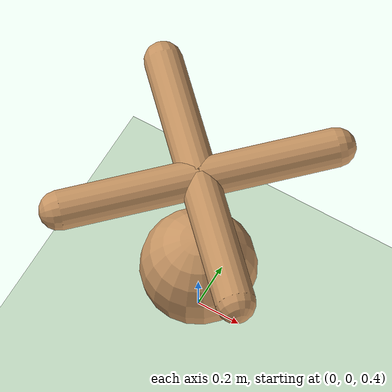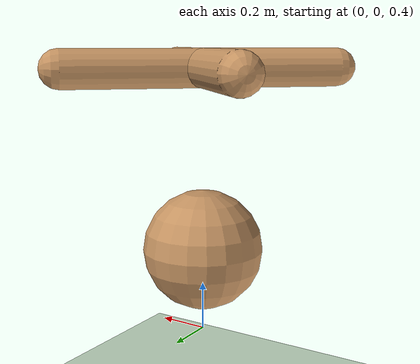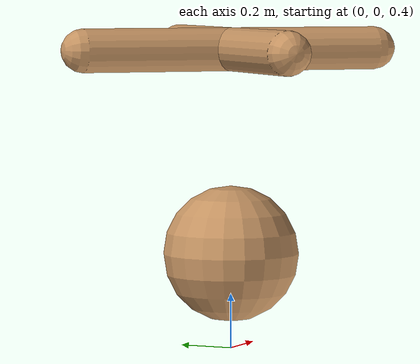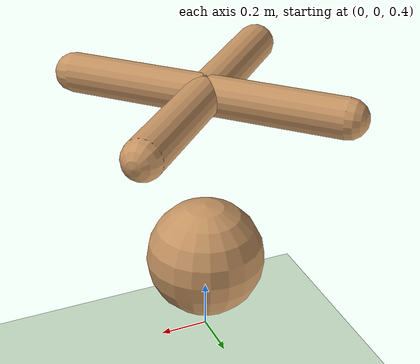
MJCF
<mujoco model="ant">
  <compiler angle="degree" coordinate="local" inertiafromgeom="true"/>
  <option integrator="RK4" timestep="0.01"/>
  <custom>
    <numeric data="0.0 0.0 0.55 1.0 0.0 0.0 0.0 0.0 1.0 0.0 -1.0 0.0 -1.0 0.0 1.0" name="init_qpos"/>
  </custom>
  <default>
    <joint armature="1" damping="1" limited="true"/>
    <geom conaffinity="0" condim="3" density="5.0" friction="1 0.5 0.5" margin="0.01" rgba="0.8 0.6 0.4 1"/>
  </default>
  <asset>
    <texture builtin="gradient" height="100" rgb1="1 1 1" rgb2="0 0 0" type="skybox" width="100"/>
    <texture builtin="flat" height="1278" mark="cross" markrgb="1 1 1" name="texgeom" random="0.01" rgb1="0.8 0.6 0.4" rgb2="0.8 0.6 0.4" type="cube" width="127"/>
    <texture builtin="checker" height="100" name="texplane" rgb1="0 0 0" rgb2="0.8 0.8 0.8" type="2d" width="100"/>
    <material name="MatPlane" reflectance="0.5" shininess="1" specular="1" texrepeat="60 60" texture="texplane"/>
    <material name="geom" texture="texgeom" texuniform="true"/>
  </asset>
  <worldbody>
    <light cutoff="100" diffuse="1 1 1" dir="-0 0 -1.3" directional="true" exponent="1" pos="0 0 1.3" specular=".1 .1 .1"/>
    <geom axisangle="0.1 0.1 0.1 -7.5" conaffinity="1" condim="3" material="MatPlane" name="floor" pos="0 0 0" rgba="0.8 0.9 0.8 1" size="40 40 40" type="plane"/>
    <body name="0" pos="0 0 0.75">
      <camera name="track" mode="trackcom" pos="0 -3 0.3" xyaxes="1 0 0 0 0 1"/>
      <geom pos="0 0 0" size="0.25" type="sphere"/>
      <joint armature="0" damping="0" limited="false" margin="0.01" name="root" pos="0 0 0" type="free"/>
      <body name="1" pos="0 0 0.75">
        <joint axis="-0.707107 0.707107 0" name="1_joint" pos="0 0 0" range="-30 30" type="hinge"/>
        <geom fromto="0 0 0 0.4 0.4 0" size="0.08" type="capsule"/>
      </body>
      <body name="2" pos="0 0 0.75">
        <joint axis="-0.707107 -0.707107 0" name="2_joint" pos="0 0 0" range="-30 30" type="hinge"/>
        <geom fromto="0 0 0 -0.4 0.4 0" size="0.08" type="capsule"/>
      </body>
      <body name="3" pos="0 0 0.75">
        <joint axis="0.707107 -0.707107 0" name="3_joint" pos="0 0 0" range="-30 30" type="hinge"/>
        <geom fromto="0 0 0 -0.4 -0.4 0" size="0.08" type="capsule"/>
      </body>
      <body name="4" pos="0 0 0.75">
        <joint axis="0.707107 0.707107 0" name="4_joint" pos="0 0 0" range="-30 30" type="hinge"/>
        <geom fromto="0 0 0 0.4 -0.4 0" size="0.08" type="capsule"/>
      </body>
    </body>
  </worldbody>
  <actuator>
    <motor ctrllimited="true" ctrlrange="-1.0 1.0" joint="1_joint" gear="150" name="1_joint"/>
    <motor ctrllimited="true" ctrlrange="-1.0 1.0" joint="2_joint" gear="150" name="2_joint"/>
    <motor ctrllimited="true" ctrlrange="-1.0 1.0" joint="3_joint" gear="150" name="3_joint"/>
    <motor ctrllimited="true" ctrlrange="-1.0 1.0" joint="4_joint" gear="150" name="4_joint"/>
  </actuator>
</mujoco>
